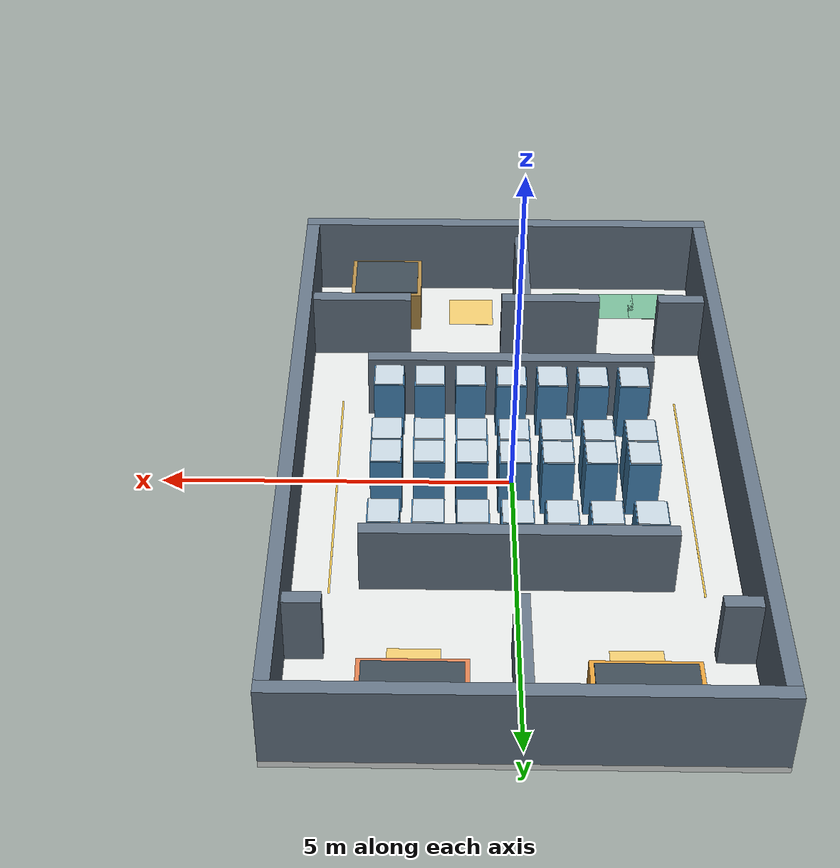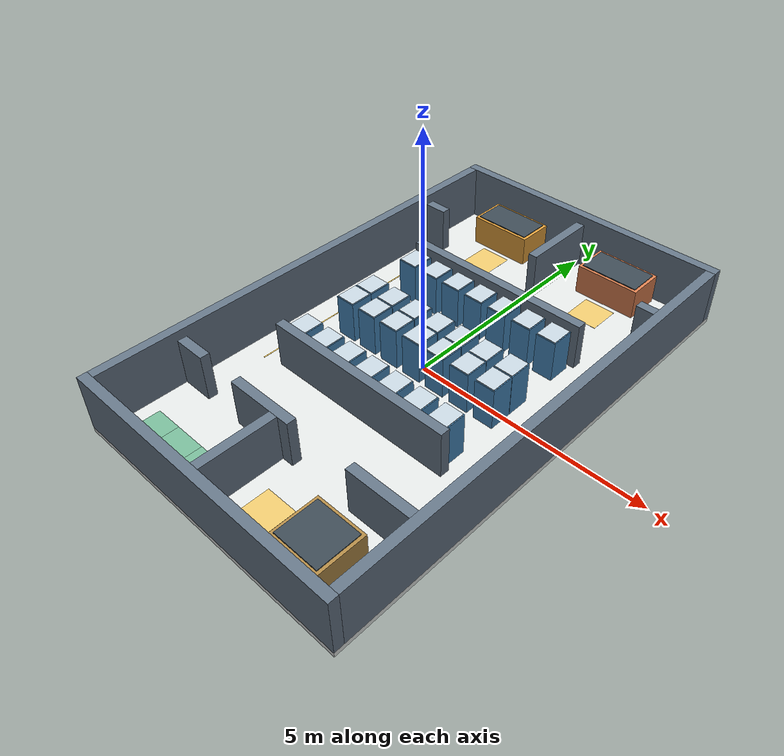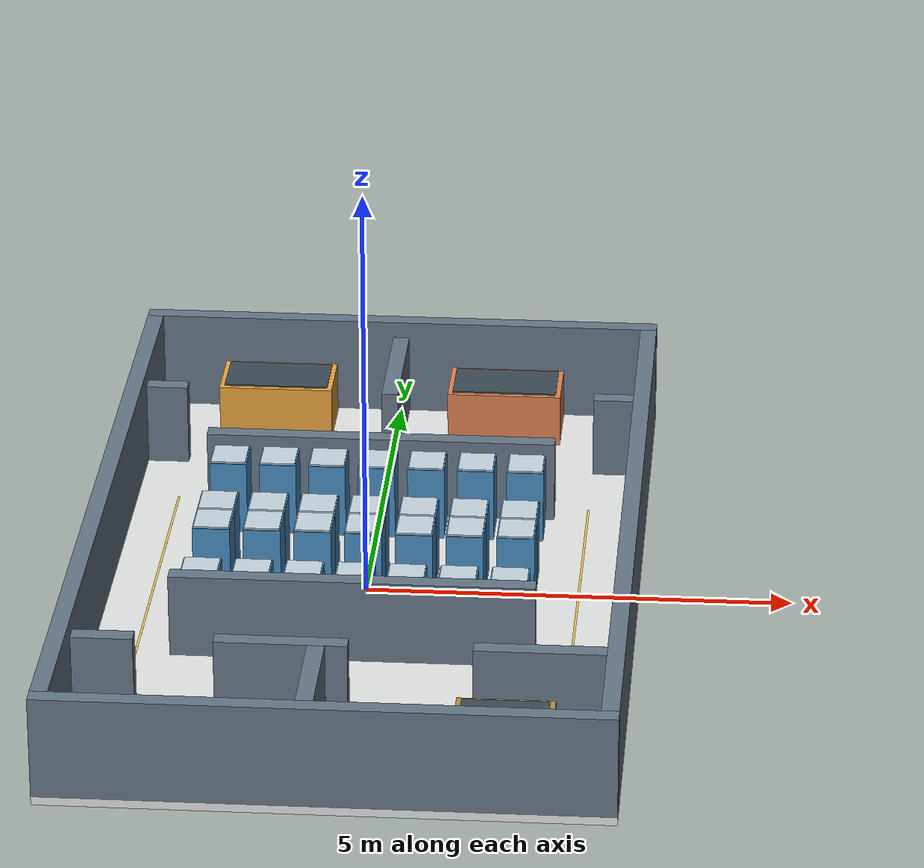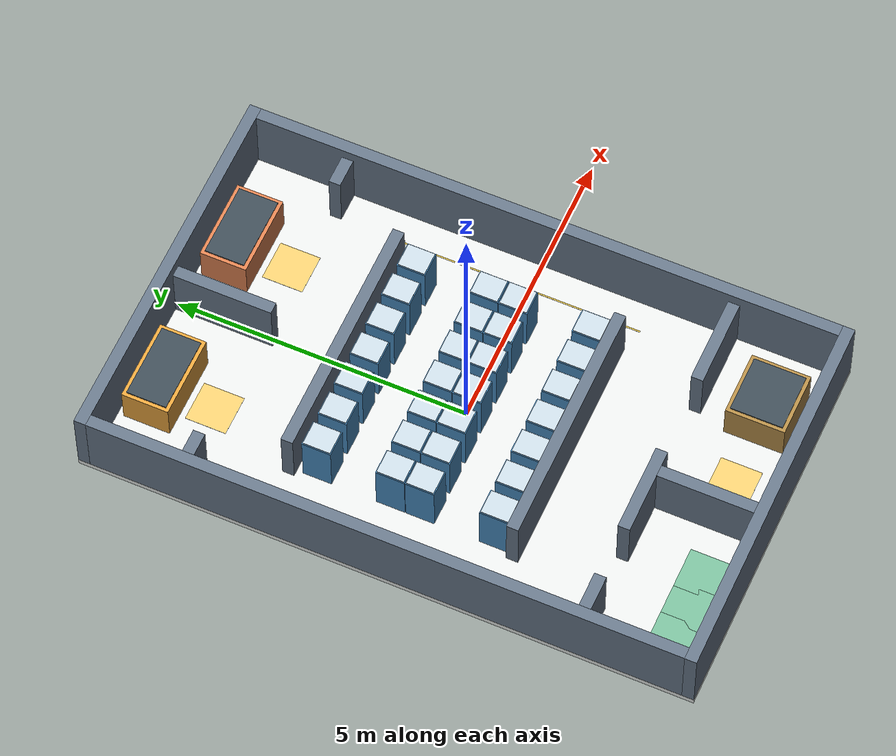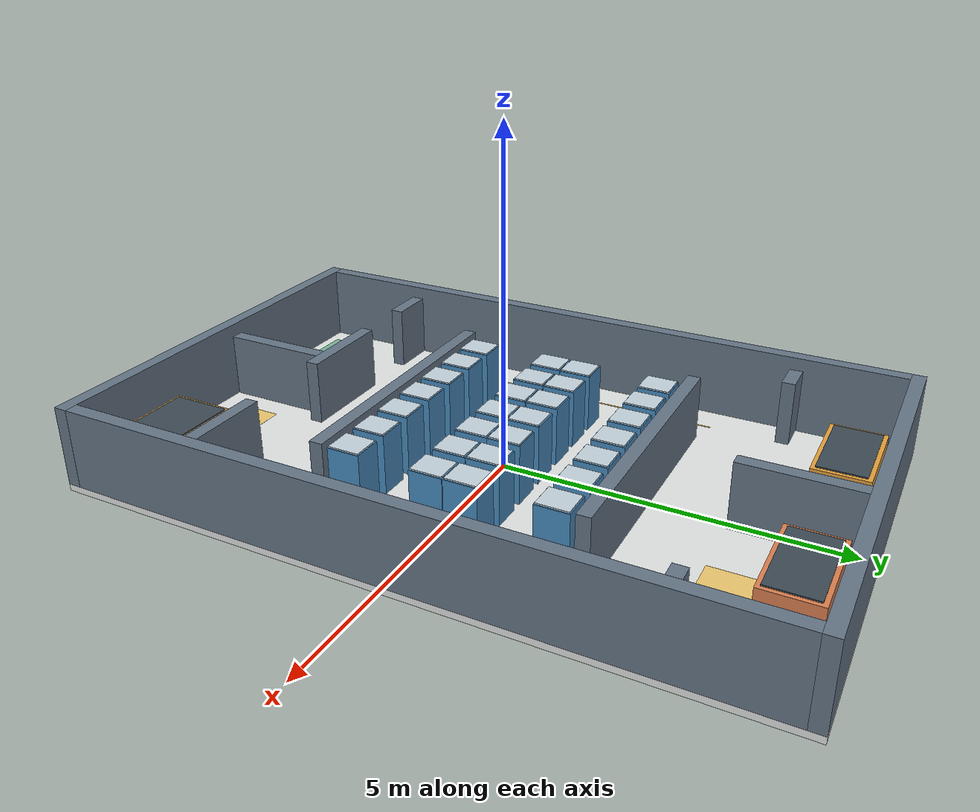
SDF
<?xml version='1.0' encoding='utf-8'?>
<sdf version="1.6">
  <world name="warehouse_small">
    <gravity>0 0 -9.8</gravity>
    <physics name="default_physics" type="ode">
      <max_step_size>0.001</max_step_size>
      <real_time_factor>1</real_time_factor>
      <real_time_update_rate>1000</real_time_update_rate>
    </physics>
    <plugin name="gazebo_ros_state" filename="libgazebo_ros_state.so">
      <ros>
        <namespace>/gazebo</namespace>
      </ros>
      <update_rate>30.0</update_rate>
    </plugin>
    <scene>
      <ambient>.7 .7 .7 1</ambient>
      <background>.88 .91 .94 1</background>
      <shadows>false</shadows>
    </scene>
    <light name="sun" type="directional">
      <pose>0 0 10 0 0 0</pose>
      <diffuse>.8 .8 .8 1</diffuse>
      <specular>.1 .1 .1 1</specular>
      <direction>-.3 .2 -1</direction>
      <cast_shadows>false</cast_shadows>
    </light>
    <model name="floor">
      <static>true</static>
      <link name="floor_link">
        <collision name="floor_collision">
          <pose>0 0 -.05 0 0 0</pose>
          <geometry>
            <box>
              <size>6.4 10.4 0.1</size>
            </box>
          </geometry>
        </collision>
        <visual name="floor_visual">
          <pose>0 0 -0.05 0 0 0</pose>
          <geometry>
            <box>
              <size>6.4 10.4 0.1</size>
            </box>
          </geometry>
          <material>
            <ambient>0.8901960784313725 0.9019607843137255 0.8980392156862745 1</ambient>
            <diffuse>0.8901960784313725 0.9019607843137255 0.8980392156862745 1</diffuse>
          </material>
          <cast_shadows>false</cast_shadows>
        </visual>
      </link>
    </model>
    <model name="wall_north">
      <static>true</static>
      <pose>0 5.1 0 0 0 0</pose>
      <link name="body">
        <collision name="collision">
          <pose>0 0 0.6 0 0 0</pose>
          <geometry>
            <box>
              <size>6.4 0.2 1.2</size>
            </box>
          </geometry>
        </collision>
        <visual name="visual">
          <pose>0 0 0.6 0 0 0</pose>
          <geometry>
            <box>
              <size>6.4 0.2 1.2</size>
            </box>
          </geometry>
          <material>
            <ambient>0.4 0.4627450980392157 0.5294117647058824 1</ambient>
            <diffuse>0.4 0.4627450980392157 0.5294117647058824 1</diffuse>
          </material>
          <cast_shadows>false</cast_shadows>
        </visual>
      </link>
    </model>
    <model name="wall_south">
      <static>true</static>
      <pose>0 -5.1 0 0 0 0</pose>
      <link name="body">
        <collision name="collision">
          <pose>0 0 0.6 0 0 0</pose>
          <geometry>
            <box>
              <size>6.4 0.2 1.2</size>
            </box>
          </geometry>
        </collision>
        <visual name="visual">
          <pose>0 0 0.6 0 0 0</pose>
          <geometry>
            <box>
              <size>6.4 0.2 1.2</size>
            </box>
          </geometry>
          <material>
            <ambient>0.4 0.4627450980392157 0.5294117647058824 1</ambient>
            <diffuse>0.4 0.4627450980392157 0.5294117647058824 1</diffuse>
          </material>
          <cast_shadows>false</cast_shadows>
        </visual>
      </link>
    </model>
    <model name="wall_west">
      <static>true</static>
      <pose>-3.1 0 0 0 0 0</pose>
      <link name="body">
        <collision name="collision">
          <pose>0 0 0.6 0 0 0</pose>
          <geometry>
            <box>
              <size>0.2 10 1.2</size>
            </box>
          </geometry>
        </collision>
        <visual name="visual">
          <pose>0 0 0.6 0 0 0</pose>
          <geometry>
            <box>
              <size>0.2 10 1.2</size>
            </box>
          </geometry>
          <material>
            <ambient>0.4 0.4627450980392157 0.5294117647058824 1</ambient>
            <diffuse>0.4 0.4627450980392157 0.5294117647058824 1</diffuse>
          </material>
          <cast_shadows>false</cast_shadows>
        </visual>
      </link>
    </model>
    <model name="wall_east">
      <static>true</static>
      <pose>3.1 0 0 0 0 0</pose>
      <link name="body">
        <collision name="collision">
          <pose>0 0 0.6 0 0 0</pose>
          <geometry>
            <box>
              <size>0.2 10 1.2</size>
            </box>
          </geometry>
        </collision>
        <visual name="visual">
          <pose>0 0 0.6 0 0 0</pose>
          <geometry>
            <box>
              <size>0.2 10 1.2</size>
            </box>
          </geometry>
          <material>
            <ambient>0.4 0.4627450980392157 0.5294117647058824 1</ambient>
            <diffuse>0.4 0.4627450980392157 0.5294117647058824 1</diffuse>
          </material>
          <cast_shadows>false</cast_shadows>
        </visual>
      </link>
    </model>
    <model name="storage_north">
      <static>true</static>
      <pose>0 2.1 0 0 0 0</pose>
      <link name="body">
        <collision name="collision">
          <pose>0 0 0.5 0 0 0</pose>
          <geometry>
            <box>
              <size>4.2 0.2 1.0</size>
            </box>
          </geometry>
        </collision>
        <visual name="visual">
          <pose>0 0 0.5 0 0 0</pose>
          <geometry>
            <box>
              <size>4.2 0.2 1.0</size>
            </box>
          </geometry>
          <material>
            <ambient>0.4 0.4627450980392157 0.5294117647058824 1</ambient>
            <diffuse>0.4 0.4627450980392157 0.5294117647058824 1</diffuse>
          </material>
          <cast_shadows>false</cast_shadows>
        </visual>
      </link>
    </model>
    <model name="storage_south">
      <static>true</static>
      <pose>0 -1.7 0 0 0 0</pose>
      <link name="body">
        <collision name="collision">
          <pose>0 0 0.5 0 0 0</pose>
          <geometry>
            <box>
              <size>4.2 0.2 1.0</size>
            </box>
          </geometry>
        </collision>
        <visual name="visual">
          <pose>0 0 0.5 0 0 0</pose>
          <geometry>
            <box>
              <size>4.2 0.2 1.0</size>
            </box>
          </geometry>
          <material>
            <ambient>0.4 0.4627450980392157 0.5294117647058824 1</ambient>
            <diffuse>0.4 0.4627450980392157 0.5294117647058824 1</diffuse>
          </material>
          <cast_shadows>false</cast_shadows>
        </visual>
      </link>
    </model>
    <model name="wall_t1_t2">
      <static>true</static>
      <pose>0 4.15 0 0 0 0</pose>
      <link name="body">
        <collision name="collision">
          <pose>0 0 0.5 0 0 0</pose>
          <geometry>
            <box>
              <size>0.2 1.7 1.0</size>
            </box>
          </geometry>
        </collision>
        <visual name="visual">
          <pose>0 0 0.5 0 0 0</pose>
          <geometry>
            <box>
              <size>0.2 1.7 1.0</size>
            </box>
          </geometry>
          <material>
            <ambient>0.4 0.4627450980392157 0.5294117647058824 1</ambient>
            <diffuse>0.4 0.4627450980392157 0.5294117647058824 1</diffuse>
          </material>
          <cast_shadows>false</cast_shadows>
        </visual>
      </link>
    </model>
    <model name="work_stub_w">
      <static>true</static>
      <pose>-2.75 3.4 0 0 0 0</pose>
      <link name="body">
        <collision name="collision">
          <pose>0 0 0.5 0 0 0</pose>
          <geometry>
            <box>
              <size>0.5 0.2 1.0</size>
            </box>
          </geometry>
        </collision>
        <visual name="visual">
          <pose>0 0 0.5 0 0 0</pose>
          <geometry>
            <box>
              <size>0.5 0.2 1.0</size>
            </box>
          </geometry>
          <material>
            <ambient>0.4 0.4627450980392157 0.5294117647058824 1</ambient>
            <diffuse>0.4 0.4627450980392157 0.5294117647058824 1</diffuse>
          </material>
          <cast_shadows>false</cast_shadows>
        </visual>
      </link>
    </model>
    <model name="work_stub_e">
      <static>true</static>
      <pose>2.75 3.4 0 0 0 0</pose>
      <link name="body">
        <collision name="collision">
          <pose>0 0 0.5 0 0 0</pose>
          <geometry>
            <box>
              <size>0.5 0.2 1.0</size>
            </box>
          </geometry>
        </collision>
        <visual name="visual">
          <pose>0 0 0.5 0 0 0</pose>
          <geometry>
            <box>
              <size>0.5 0.2 1.0</size>
            </box>
          </geometry>
          <material>
            <ambient>0.4 0.4627450980392157 0.5294117647058824 1</ambient>
            <diffuse>0.4 0.4627450980392157 0.5294117647058824 1</diffuse>
          </material>
          <cast_shadows>false</cast_shadows>
        </visual>
      </link>
    </model>
    <model name="partition_west">
      <static>true</static>
      <pose>-2.65 -3.25 0 0 0 0</pose>
      <link name="body">
        <collision name="collision">
          <pose>0 0 0.5 0 0 0</pose>
          <geometry>
            <box>
              <size>0.7 0.2 1.0</size>
            </box>
          </geometry>
        </collision>
        <visual name="visual">
          <pose>0 0 0.5 0 0 0</pose>
          <geometry>
            <box>
              <size>0.7 0.2 1.0</size>
            </box>
          </geometry>
          <material>
            <ambient>0.4 0.4627450980392157 0.5294117647058824 1</ambient>
            <diffuse>0.4 0.4627450980392157 0.5294117647058824 1</diffuse>
          </material>
          <cast_shadows>false</cast_shadows>
        </visual>
      </link>
    </model>
    <model name="partition_middle">
      <static>true</static>
      <pose>-0.65 -3.25 0 0 0 0</pose>
      <link name="body">
        <collision name="collision">
          <pose>0 0 0.5 0 0 0</pose>
          <geometry>
            <box>
              <size>1.5 0.2 1.0</size>
            </box>
          </geometry>
        </collision>
        <visual name="visual">
          <pose>0 0 0.5 0 0 0</pose>
          <geometry>
            <box>
              <size>1.5 0.2 1.0</size>
            </box>
          </geometry>
          <material>
            <ambient>0.4 0.4627450980392157 0.5294117647058824 1</ambient>
            <diffuse>0.4 0.4627450980392157 0.5294117647058824 1</diffuse>
          </material>
          <cast_shadows>false</cast_shadows>
        </visual>
      </link>
    </model>
    <model name="partition_east">
      <static>true</static>
      <pose>2.25 -3.25 0 0 0 0</pose>
      <link name="body">
        <collision name="collision">
          <pose>0 0 0.5 0 0 0</pose>
          <geometry>
            <box>
              <size>1.5 0.2 1.0</size>
            </box>
          </geometry>
        </collision>
        <visual name="visual">
          <pose>0 0 0.5 0 0 0</pose>
          <geometry>
            <box>
              <size>1.5 0.2 1.0</size>
            </box>
          </geometry>
          <material>
            <ambient>0.4 0.4627450980392157 0.5294117647058824 1</ambient>
            <diffuse>0.4 0.4627450980392157 0.5294117647058824 1</diffuse>
          </material>
          <cast_shadows>false</cast_shadows>
        </visual>
      </link>
    </model>
    <model name="shipping_divider">
      <static>true</static>
      <pose>-0.25 -4.175 0 0 0 0</pose>
      <link name="body">
        <collision name="collision">
          <pose>0 0 0.5 0 0 0</pose>
          <geometry>
            <box>
              <size>0.2 1.65 1.0</size>
            </box>
          </geometry>
        </collision>
        <visual name="visual">
          <pose>0 0 0.5 0 0 0</pose>
          <geometry>
            <box>
              <size>0.2 1.65 1.0</size>
            </box>
          </geometry>
          <material>
            <ambient>0.4 0.4627450980392157 0.5294117647058824 1</ambient>
            <diffuse>0.4 0.4627450980392157 0.5294117647058824 1</diffuse>
          </material>
          <cast_shadows>false</cast_shadows>
        </visual>
      </link>
    </model>
    <model name="receiving">
      <static>true</static>
      <pose>-1.5 4.5 0 0 0 0</pose>
      <link name="body">
        <collision name="collision">
          <pose>0 0 0.325 0 0 0</pose>
          <geometry>
            <box>
              <size>1.4 0.8 0.65</size>
            </box>
          </geometry>
        </collision>
        <visual name="visual">
          <pose>0 0 0.325 0 0 0</pose>
          <geometry>
            <box>
              <size>1.4 0.8 0.65</size>
            </box>
          </geometry>
          <material>
            <ambient>0.9019607843137255 0.6352941176470588 0.23529411764705882 1</ambient>
            <diffuse>0.9019607843137255 0.6352941176470588 0.23529411764705882 1</diffuse>
          </material>
          <cast_shadows>false</cast_shadows>
        </visual>
        <visual name="work_surface">
          <pose>0 0 0.66 0 0 0</pose>
          <geometry>
            <box>
              <size>1.2799999999999998 0.68 0.02</size>
            </box>
          </geometry>
          <material>
            <ambient>0.23921568627450981 0.29411764705882354 0.3333333333333333 1</ambient>
            <diffuse>0.23921568627450981 0.29411764705882354 0.3333333333333333 1</diffuse>
          </material>
          <cast_shadows>false</cast_shadows>
        </visual>
      </link>
    </model>
    <model name="conveyor">
      <static>true</static>
      <pose>1.35 4.5 0 0 0 0</pose>
      <link name="body">
        <collision name="collision">
          <pose>0 0 0.325 0 0 0</pose>
          <geometry>
            <box>
              <size>1.4 0.8 0.65</size>
            </box>
          </geometry>
        </collision>
        <visual name="visual">
          <pose>0 0 0.325 0 0 0</pose>
          <geometry>
            <box>
              <size>1.4 0.8 0.65</size>
            </box>
          </geometry>
          <material>
            <ambient>0.8627450980392157 0.5019607843137255 0.3137254901960784 1</ambient>
            <diffuse>0.8627450980392157 0.5019607843137255 0.3137254901960784 1</diffuse>
          </material>
          <cast_shadows>false</cast_shadows>
        </visual>
        <visual name="work_surface">
          <pose>0 0 0.66 0 0 0</pose>
          <geometry>
            <box>
              <size>1.2799999999999998 0.68 0.02</size>
            </box>
          </geometry>
          <material>
            <ambient>0.23921568627450981 0.29411764705882354 0.3333333333333333 1</ambient>
            <diffuse>0.23921568627450981 0.29411764705882354 0.3333333333333333 1</diffuse>
          </material>
          <cast_shadows>false</cast_shadows>
        </visual>
      </link>
    </model>
    <model name="shipping">
      <static>true</static>
      <pose>1.9 -4.3 0 0 0 0</pose>
      <link name="body">
        <collision name="collision">
          <pose>0 0 0.325 0 0 0</pose>
          <geometry>
            <box>
              <size>1.1 1.0 0.65</size>
            </box>
          </geometry>
        </collision>
        <visual name="visual">
          <pose>0 0 0.325 0 0 0</pose>
          <geometry>
            <box>
              <size>1.1 1.0 0.65</size>
            </box>
          </geometry>
          <material>
            <ambient>0.6980392156862745 0.5450980392156862 0.2784313725490196 1</ambient>
            <diffuse>0.6980392156862745 0.5450980392156862 0.2784313725490196 1</diffuse>
          </material>
          <cast_shadows>false</cast_shadows>
        </visual>
        <visual name="work_surface">
          <pose>0 0 0.66 0 0 0</pose>
          <geometry>
            <box>
              <size>0.9800000000000001 0.88 0.02</size>
            </box>
          </geometry>
          <material>
            <ambient>0.23921568627450981 0.29411764705882354 0.3333333333333333 1</ambient>
            <diffuse>0.23921568627450981 0.29411764705882354 0.3333333333333333 1</diffuse>
          </material>
          <cast_shadows>false</cast_shadows>
        </visual>
      </link>
    </model>
    <model name="rack_A1_1">
      <static>true</static>
      <pose>-1.78 -1.35 0 0 0 0</pose>
      <link name="body">
        <collision name="collision">
          <pose>0 0 0.45 0 0 0</pose>
          <geometry>
            <box>
              <size>0.44 0.5 0.9</size>
            </box>
          </geometry>
        </collision>
        <visual name="bay_single">
          <pose>0 0 0.45 0 0 0</pose>
          <geometry>
            <box>
              <size>0.44 0.49 0.9</size>
            </box>
          </geometry>
          <material>
            <ambient>0.2823529411764706 0.5490196078431373 0.7529411764705882 1</ambient>
            <diffuse>0.2823529411764706 0.5490196078431373 0.7529411764705882 1</diffuse>
          </material>
          <cast_shadows>false</cast_shadows>
        </visual>
        <visual name="cap_single">
          <pose>0 0 0.91 0 0 0</pose>
          <geometry>
            <box>
              <size>0.41000000000000003 0.46 0.02</size>
            </box>
          </geometry>
          <material>
            <ambient>0.7764705882352941 0.8352941176470589 0.8745098039215686 1</ambient>
            <diffuse>0.7764705882352941 0.8352941176470589 0.8745098039215686 1</diffuse>
          </material>
          <cast_shadows>false</cast_shadows>
        </visual>
      </link>
    </model>
    <model name="rack_A1_2">
      <static>true</static>
      <pose>-1.1866666666666668 -1.35 0 0 0 0</pose>
      <link name="body">
        <collision name="collision">
          <pose>0 0 0.45 0 0 0</pose>
          <geometry>
            <box>
              <size>0.44 0.5 0.9</size>
            </box>
          </geometry>
        </collision>
        <visual name="bay_single">
          <pose>0 0 0.45 0 0 0</pose>
          <geometry>
            <box>
              <size>0.44 0.49 0.9</size>
            </box>
          </geometry>
          <material>
            <ambient>0.2823529411764706 0.5490196078431373 0.7529411764705882 1</ambient>
            <diffuse>0.2823529411764706 0.5490196078431373 0.7529411764705882 1</diffuse>
          </material>
          <cast_shadows>false</cast_shadows>
        </visual>
        <visual name="cap_single">
          <pose>0 0 0.91 0 0 0</pose>
          <geometry>
            <box>
              <size>0.41000000000000003 0.46 0.02</size>
            </box>
          </geometry>
          <material>
            <ambient>0.7764705882352941 0.8352941176470589 0.8745098039215686 1</ambient>
            <diffuse>0.7764705882352941 0.8352941176470589 0.8745098039215686 1</diffuse>
          </material>
          <cast_shadows>false</cast_shadows>
        </visual>
      </link>
    </model>
    <model name="rack_A1_3">
      <static>true</static>
      <pose>-0.5933333333333335 -1.35 0 0 0 0</pose>
      <link name="body">
        <collision name="collision">
          <pose>0 0 0.45 0 0 0</pose>
          <geometry>
            <box>
              <size>0.44 0.5 0.9</size>
            </box>
          </geometry>
        </collision>
        <visual name="bay_single">
          <pose>0 0 0.45 0 0 0</pose>
          <geometry>
            <box>
              <size>0.44 0.49 0.9</size>
            </box>
          </geometry>
          <material>
            <ambient>0.2823529411764706 0.5490196078431373 0.7529411764705882 1</ambient>
            <diffuse>0.2823529411764706 0.5490196078431373 0.7529411764705882 1</diffuse>
          </material>
          <cast_shadows>false</cast_shadows>
        </visual>
        <visual name="cap_single">
          <pose>0 0 0.91 0 0 0</pose>
          <geometry>
            <box>
              <size>0.41000000000000003 0.46 0.02</size>
            </box>
          </geometry>
          <material>
            <ambient>0.7764705882352941 0.8352941176470589 0.8745098039215686 1</ambient>
            <diffuse>0.7764705882352941 0.8352941176470589 0.8745098039215686 1</diffuse>
          </material>
          <cast_shadows>false</cast_shadows>
        </visual>
      </link>
    </model>
    <model name="rack_A1_4">
      <static>true</static>
      <pose>-2.220446049250313e-16 -1.35 0 0 0 0</pose>
      <link name="body">
        <collision name="collision">
          <pose>0 0 0.45 0 0 0</pose>
          <geometry>
            <box>
              <size>0.44 0.5 0.9</size>
            </box>
          </geometry>
        </collision>
        <visual name="bay_single">
          <pose>0 0 0.45 0 0 0</pose>
          <geometry>
            <box>
              <size>0.44 0.49 0.9</size>
            </box>
          </geometry>
          <material>
            <ambient>0.2823529411764706 0.5490196078431373 0.7529411764705882 1</ambient>
            <diffuse>0.2823529411764706 0.5490196078431373 0.7529411764705882 1</diffuse>
          </material>
          <cast_shadows>false</cast_shadows>
        </visual>
        <visual name="cap_single">
          <pose>0 0 0.91 0 0 0</pose>
          <geometry>
            <box>
              <size>0.41000000000000003 0.46 0.02</size>
            </box>
          </geometry>
          <material>
            <ambient>0.7764705882352941 0.8352941176470589 0.8745098039215686 1</ambient>
            <diffuse>0.7764705882352941 0.8352941176470589 0.8745098039215686 1</diffuse>
          </material>
          <cast_shadows>false</cast_shadows>
        </visual>
      </link>
    </model>
    <model name="rack_A1_5">
      <static>true</static>
      <pose>0.593333333333333 -1.35 0 0 0 0</pose>
      <link name="body">
        <collision name="collision">
          <pose>0 0 0.45 0 0 0</pose>
          <geometry>
            <box>
              <size>0.44 0.5 0.9</size>
            </box>
          </geometry>
        </collision>
        <visual name="bay_single">
          <pose>0 0 0.45 0 0 0</pose>
          <geometry>
            <box>
              <size>0.44 0.49 0.9</size>
            </box>
          </geometry>
          <material>
            <ambient>0.2823529411764706 0.5490196078431373 0.7529411764705882 1</ambient>
            <diffuse>0.2823529411764706 0.5490196078431373 0.7529411764705882 1</diffuse>
          </material>
          <cast_shadows>false</cast_shadows>
        </visual>
        <visual name="cap_single">
          <pose>0 0 0.91 0 0 0</pose>
          <geometry>
            <box>
              <size>0.41000000000000003 0.46 0.02</size>
            </box>
          </geometry>
          <material>
            <ambient>0.7764705882352941 0.8352941176470589 0.8745098039215686 1</ambient>
            <diffuse>0.7764705882352941 0.8352941176470589 0.8745098039215686 1</diffuse>
          </material>
          <cast_shadows>false</cast_shadows>
        </visual>
      </link>
    </model>
    <model name="rack_A1_6">
      <static>true</static>
      <pose>1.1866666666666663 -1.35 0 0 0 0</pose>
      <link name="body">
        <collision name="collision">
          <pose>0 0 0.45 0 0 0</pose>
          <geometry>
            <box>
              <size>0.44 0.5 0.9</size>
            </box>
          </geometry>
        </collision>
        <visual name="bay_single">
          <pose>0 0 0.45 0 0 0</pose>
          <geometry>
            <box>
              <size>0.44 0.49 0.9</size>
            </box>
          </geometry>
          <material>
            <ambient>0.2823529411764706 0.5490196078431373 0.7529411764705882 1</ambient>
            <diffuse>0.2823529411764706 0.5490196078431373 0.7529411764705882 1</diffuse>
          </material>
          <cast_shadows>false</cast_shadows>
        </visual>
        <visual name="cap_single">
          <pose>0 0 0.91 0 0 0</pose>
          <geometry>
            <box>
              <size>0.41000000000000003 0.46 0.02</size>
            </box>
          </geometry>
          <material>
            <ambient>0.7764705882352941 0.8352941176470589 0.8745098039215686 1</ambient>
            <diffuse>0.7764705882352941 0.8352941176470589 0.8745098039215686 1</diffuse>
          </material>
          <cast_shadows>false</cast_shadows>
        </visual>
      </link>
    </model>
    <model name="rack_A1_7">
      <static>true</static>
      <pose>1.7799999999999996 -1.35 0 0 0 0</pose>
      <link name="body">
        <collision name="collision">
          <pose>0 0 0.45 0 0 0</pose>
          <geometry>
            <box>
              <size>0.44 0.5 0.9</size>
            </box>
          </geometry>
        </collision>
        <visual name="bay_single">
          <pose>0 0 0.45 0 0 0</pose>
          <geometry>
            <box>
              <size>0.44 0.49 0.9</size>
            </box>
          </geometry>
          <material>
            <ambient>0.2823529411764706 0.5490196078431373 0.7529411764705882 1</ambient>
            <diffuse>0.2823529411764706 0.5490196078431373 0.7529411764705882 1</diffuse>
          </material>
          <cast_shadows>false</cast_shadows>
        </visual>
        <visual name="cap_single">
          <pose>0 0 0.91 0 0 0</pose>
          <geometry>
            <box>
              <size>0.41000000000000003 0.46 0.02</size>
            </box>
          </geometry>
          <material>
            <ambient>0.7764705882352941 0.8352941176470589 0.8745098039215686 1</ambient>
            <diffuse>0.7764705882352941 0.8352941176470589 0.8745098039215686 1</diffuse>
          </material>
          <cast_shadows>false</cast_shadows>
        </visual>
      </link>
    </model>
    <model name="rack_A2_1">
      <static>true</static>
      <pose>-1.78 -0.1 0 0 0 0</pose>
      <link name="body">
        <collision name="collision">
          <pose>0 0 0.45 0 0 0</pose>
          <geometry>
            <box>
              <size>0.44 0.5 0.9</size>
            </box>
          </geometry>
        </collision>
        <visual name="bay_single">
          <pose>0 0 0.45 0 0 0</pose>
          <geometry>
            <box>
              <size>0.44 0.49 0.9</size>
            </box>
          </geometry>
          <material>
            <ambient>0.2823529411764706 0.5490196078431373 0.7529411764705882 1</ambient>
            <diffuse>0.2823529411764706 0.5490196078431373 0.7529411764705882 1</diffuse>
          </material>
          <cast_shadows>false</cast_shadows>
        </visual>
        <visual name="cap_single">
          <pose>0 0 0.91 0 0 0</pose>
          <geometry>
            <box>
              <size>0.41000000000000003 0.46 0.02</size>
            </box>
          </geometry>
          <material>
            <ambient>0.7764705882352941 0.8352941176470589 0.8745098039215686 1</ambient>
            <diffuse>0.7764705882352941 0.8352941176470589 0.8745098039215686 1</diffuse>
          </material>
          <cast_shadows>false</cast_shadows>
        </visual>
      </link>
    </model>
    <model name="rack_A2_2">
      <static>true</static>
      <pose>-1.1866666666666668 -0.1 0 0 0 0</pose>
      <link name="body">
        <collision name="collision">
          <pose>0 0 0.45 0 0 0</pose>
          <geometry>
            <box>
              <size>0.44 0.5 0.9</size>
            </box>
          </geometry>
        </collision>
        <visual name="bay_single">
          <pose>0 0 0.45 0 0 0</pose>
          <geometry>
            <box>
              <size>0.44 0.49 0.9</size>
            </box>
          </geometry>
          <material>
            <ambient>0.2823529411764706 0.5490196078431373 0.7529411764705882 1</ambient>
            <diffuse>0.2823529411764706 0.5490196078431373 0.7529411764705882 1</diffuse>
          </material>
          <cast_shadows>false</cast_shadows>
        </visual>
        <visual name="cap_single">
          <pose>0 0 0.91 0 0 0</pose>
          <geometry>
            <box>
              <size>0.41000000000000003 0.46 0.02</size>
            </box>
          </geometry>
          <material>
            <ambient>0.7764705882352941 0.8352941176470589 0.8745098039215686 1</ambient>
            <diffuse>0.7764705882352941 0.8352941176470589 0.8745098039215686 1</diffuse>
          </material>
          <cast_shadows>false</cast_shadows>
        </visual>
      </link>
    </model>
    <model name="rack_A2_3">
      <static>true</static>
      <pose>-0.5933333333333335 -0.1 0 0 0 0</pose>
      <link name="body">
        <collision name="collision">
          <pose>0 0 0.45 0 0 0</pose>
          <geometry>
            <box>
              <size>0.44 0.5 0.9</size>
            </box>
          </geometry>
        </collision>
        <visual name="bay_single">
          <pose>0 0 0.45 0 0 0</pose>
          <geometry>
            <box>
              <size>0.44 0.49 0.9</size>
            </box>
          </geometry>
          <material>
            <ambient>0.2823529411764706 0.5490196078431373 0.7529411764705882 1</ambient>
            <diffuse>0.2823529411764706 0.5490196078431373 0.7529411764705882 1</diffuse>
          </material>
          <cast_shadows>false</cast_shadows>
        </visual>
        <visual name="cap_single">
          <pose>0 0 0.91 0 0 0</pose>
          <geometry>
            <box>
              <size>0.41000000000000003 0.46 0.02</size>
            </box>
          </geometry>
          <material>
            <ambient>0.7764705882352941 0.8352941176470589 0.8745098039215686 1</ambient>
            <diffuse>0.7764705882352941 0.8352941176470589 0.8745098039215686 1</diffuse>
          </material>
          <cast_shadows>false</cast_shadows>
        </visual>
      </link>
    </model>
    <model name="rack_A2_4">
      <static>true</static>
      <pose>-2.220446049250313e-16 -0.1 0 0 0 0</pose>
      <link name="body">
        <collision name="collision">
          <pose>0 0 0.45 0 0 0</pose>
          <geometry>
            <box>
              <size>0.44 0.5 0.9</size>
            </box>
          </geometry>
        </collision>
        <visual name="bay_single">
          <pose>0 0 0.45 0 0 0</pose>
          <geometry>
            <box>
              <size>0.44 0.49 0.9</size>
            </box>
          </geometry>
          <material>
            <ambient>0.2823529411764706 0.5490196078431373 0.7529411764705882 1</ambient>
            <diffuse>0.2823529411764706 0.5490196078431373 0.7529411764705882 1</diffuse>
          </material>
          <cast_shadows>false</cast_shadows>
        </visual>
        <visual name="cap_single">
          <pose>0 0 0.91 0 0 0</pose>
          <geometry>
            <box>
              <size>0.41000000000000003 0.46 0.02</size>
            </box>
          </geometry>
          <material>
            <ambient>0.7764705882352941 0.8352941176470589 0.8745098039215686 1</ambient>
            <diffuse>0.7764705882352941 0.8352941176470589 0.8745098039215686 1</diffuse>
          </material>
          <cast_shadows>false</cast_shadows>
        </visual>
      </link>
    </model>
    <model name="rack_A2_5">
      <static>true</static>
      <pose>0.593333333333333 -0.1 0 0 0 0</pose>
      <link name="body">
        <collision name="collision">
          <pose>0 0 0.45 0 0 0</pose>
          <geometry>
            <box>
              <size>0.44 0.5 0.9</size>
            </box>
          </geometry>
        </collision>
        <visual name="bay_single">
          <pose>0 0 0.45 0 0 0</pose>
          <geometry>
            <box>
              <size>0.44 0.49 0.9</size>
            </box>
          </geometry>
          <material>
            <ambient>0.2823529411764706 0.5490196078431373 0.7529411764705882 1</ambient>
            <diffuse>0.2823529411764706 0.5490196078431373 0.7529411764705882 1</diffuse>
          </material>
          <cast_shadows>false</cast_shadows>
        </visual>
        <visual name="cap_single">
          <pose>0 0 0.91 0 0 0</pose>
          <geometry>
            <box>
              <size>0.41000000000000003 0.46 0.02</size>
            </box>
          </geometry>
          <material>
            <ambient>0.7764705882352941 0.8352941176470589 0.8745098039215686 1</ambient>
            <diffuse>0.7764705882352941 0.8352941176470589 0.8745098039215686 1</diffuse>
          </material>
          <cast_shadows>false</cast_shadows>
        </visual>
      </link>
    </model>
    <model name="rack_A2_6">
      <static>true</static>
      <pose>1.1866666666666663 -0.1 0 0 0 0</pose>
      <link name="body">
        <collision name="collision">
          <pose>0 0 0.45 0 0 0</pose>
          <geometry>
            <box>
              <size>0.44 0.5 0.9</size>
            </box>
          </geometry>
        </collision>
        <visual name="bay_single">
          <pose>0 0 0.45 0 0 0</pose>
          <geometry>
            <box>
              <size>0.44 0.49 0.9</size>
            </box>
          </geometry>
          <material>
            <ambient>0.2823529411764706 0.5490196078431373 0.7529411764705882 1</ambient>
            <diffuse>0.2823529411764706 0.5490196078431373 0.7529411764705882 1</diffuse>
          </material>
          <cast_shadows>false</cast_shadows>
        </visual>
        <visual name="cap_single">
          <pose>0 0 0.91 0 0 0</pose>
          <geometry>
            <box>
              <size>0.41000000000000003 0.46 0.02</size>
            </box>
          </geometry>
          <material>
            <ambient>0.7764705882352941 0.8352941176470589 0.8745098039215686 1</ambient>
            <diffuse>0.7764705882352941 0.8352941176470589 0.8745098039215686 1</diffuse>
          </material>
          <cast_shadows>false</cast_shadows>
        </visual>
      </link>
    </model>
    <model name="rack_A2_7">
      <static>true</static>
      <pose>1.7799999999999996 -0.1 0 0 0 0</pose>
      <link name="body">
        <collision name="collision">
          <pose>0 0 0.45 0 0 0</pose>
          <geometry>
            <box>
              <size>0.44 0.5 0.9</size>
            </box>
          </geometry>
        </collision>
        <visual name="bay_single">
          <pose>0 0 0.45 0 0 0</pose>
          <geometry>
            <box>
              <size>0.44 0.49 0.9</size>
            </box>
          </geometry>
          <material>
            <ambient>0.2823529411764706 0.5490196078431373 0.7529411764705882 1</ambient>
            <diffuse>0.2823529411764706 0.5490196078431373 0.7529411764705882 1</diffuse>
          </material>
          <cast_shadows>false</cast_shadows>
        </visual>
        <visual name="cap_single">
          <pose>0 0 0.91 0 0 0</pose>
          <geometry>
            <box>
              <size>0.41000000000000003 0.46 0.02</size>
            </box>
          </geometry>
          <material>
            <ambient>0.7764705882352941 0.8352941176470589 0.8745098039215686 1</ambient>
            <diffuse>0.7764705882352941 0.8352941176470589 0.8745098039215686 1</diffuse>
          </material>
          <cast_shadows>false</cast_shadows>
        </visual>
      </link>
    </model>
    <model name="rack_B1_1">
      <static>true</static>
      <pose>-1.78 0.4 0 0 0 0</pose>
      <link name="body">
        <collision name="collision">
          <pose>0 0 0.45 0 0 0</pose>
          <geometry>
            <box>
              <size>0.44 0.5 0.9</size>
            </box>
          </geometry>
        </collision>
        <visual name="bay_single">
          <pose>0 0 0.45 0 0 0</pose>
          <geometry>
            <box>
              <size>0.44 0.49 0.9</size>
            </box>
          </geometry>
          <material>
            <ambient>0.2823529411764706 0.5490196078431373 0.7529411764705882 1</ambient>
            <diffuse>0.2823529411764706 0.5490196078431373 0.7529411764705882 1</diffuse>
          </material>
          <cast_shadows>false</cast_shadows>
        </visual>
        <visual name="cap_single">
          <pose>0 0 0.91 0 0 0</pose>
          <geometry>
            <box>
              <size>0.41000000000000003 0.46 0.02</size>
            </box>
          </geometry>
          <material>
            <ambient>0.7764705882352941 0.8352941176470589 0.8745098039215686 1</ambient>
            <diffuse>0.7764705882352941 0.8352941176470589 0.8745098039215686 1</diffuse>
          </material>
          <cast_shadows>false</cast_shadows>
        </visual>
      </link>
    </model>
    <model name="rack_B1_2">
      <static>true</static>
      <pose>-1.1866666666666668 0.4 0 0 0 0</pose>
      <link name="body">
        <collision name="collision">
          <pose>0 0 0.45 0 0 0</pose>
          <geometry>
            <box>
              <size>0.44 0.5 0.9</size>
            </box>
          </geometry>
        </collision>
        <visual name="bay_single">
          <pose>0 0 0.45 0 0 0</pose>
          <geometry>
            <box>
              <size>0.44 0.49 0.9</size>
            </box>
          </geometry>
          <material>
            <ambient>0.2823529411764706 0.5490196078431373 0.7529411764705882 1</ambient>
            <diffuse>0.2823529411764706 0.5490196078431373 0.7529411764705882 1</diffuse>
          </material>
          <cast_shadows>false</cast_shadows>
        </visual>
        <visual name="cap_single">
          <pose>0 0 0.91 0 0 0</pose>
          <geometry>
            <box>
              <size>0.41000000000000003 0.46 0.02</size>
            </box>
          </geometry>
          <material>
            <ambient>0.7764705882352941 0.8352941176470589 0.8745098039215686 1</ambient>
            <diffuse>0.7764705882352941 0.8352941176470589 0.8745098039215686 1</diffuse>
          </material>
          <cast_shadows>false</cast_shadows>
        </visual>
      </link>
    </model>
    <model name="rack_B1_3">
      <static>true</static>
      <pose>-0.5933333333333335 0.4 0 0 0 0</pose>
      <link name="body">
        <collision name="collision">
          <pose>0 0 0.45 0 0 0</pose>
          <geometry>
            <box>
              <size>0.44 0.5 0.9</size>
            </box>
          </geometry>
        </collision>
        <visual name="bay_single">
          <pose>0 0 0.45 0 0 0</pose>
          <geometry>
            <box>
              <size>0.44 0.49 0.9</size>
            </box>
          </geometry>
          <material>
            <ambient>0.2823529411764706 0.5490196078431373 0.7529411764705882 1</ambient>
            <diffuse>0.2823529411764706 0.5490196078431373 0.7529411764705882 1</diffuse>
          </material>
          <cast_shadows>false</cast_shadows>
        </visual>
        <visual name="cap_single">
          <pose>0 0 0.91 0 0 0</pose>
          <geometry>
            <box>
              <size>0.41000000000000003 0.46 0.02</size>
            </box>
          </geometry>
          <material>
            <ambient>0.7764705882352941 0.8352941176470589 0.8745098039215686 1</ambient>
            <diffuse>0.7764705882352941 0.8352941176470589 0.8745098039215686 1</diffuse>
          </material>
          <cast_shadows>false</cast_shadows>
        </visual>
      </link>
    </model>
    <model name="rack_B1_4">
      <static>true</static>
      <pose>-2.220446049250313e-16 0.4 0 0 0 0</pose>
      <link name="body">
        <collision name="collision">
          <pose>0 0 0.45 0 0 0</pose>
          <geometry>
            <box>
              <size>0.44 0.5 0.9</size>
            </box>
          </geometry>
        </collision>
        <visual name="bay_single">
          <pose>0 0 0.45 0 0 0</pose>
          <geometry>
            <box>
              <size>0.44 0.49 0.9</size>
            </box>
          </geometry>
          <material>
            <ambient>0.2823529411764706 0.5490196078431373 0.7529411764705882 1</ambient>
            <diffuse>0.2823529411764706 0.5490196078431373 0.7529411764705882 1</diffuse>
          </material>
          <cast_shadows>false</cast_shadows>
        </visual>
        <visual name="cap_single">
          <pose>0 0 0.91 0 0 0</pose>
          <geometry>
            <box>
              <size>0.41000000000000003 0.46 0.02</size>
            </box>
          </geometry>
          <material>
            <ambient>0.7764705882352941 0.8352941176470589 0.8745098039215686 1</ambient>
            <diffuse>0.7764705882352941 0.8352941176470589 0.8745098039215686 1</diffuse>
          </material>
          <cast_shadows>false</cast_shadows>
        </visual>
      </link>
    </model>
    <model name="rack_B1_5">
      <static>true</static>
      <pose>0.593333333333333 0.4 0 0 0 0</pose>
      <link name="body">
        <collision name="collision">
          <pose>0 0 0.45 0 0 0</pose>
          <geometry>
            <box>
              <size>0.44 0.5 0.9</size>
            </box>
          </geometry>
        </collision>
        <visual name="bay_single">
          <pose>0 0 0.45 0 0 0</pose>
          <geometry>
            <box>
              <size>0.44 0.49 0.9</size>
            </box>
          </geometry>
          <material>
            <ambient>0.2823529411764706 0.5490196078431373 0.7529411764705882 1</ambient>
            <diffuse>0.2823529411764706 0.5490196078431373 0.7529411764705882 1</diffuse>
          </material>
          <cast_shadows>false</cast_shadows>
        </visual>
        <visual name="cap_single">
          <pose>0 0 0.91 0 0 0</pose>
          <geometry>
            <box>
              <size>0.41000000000000003 0.46 0.02</size>
            </box>
          </geometry>
          <material>
            <ambient>0.7764705882352941 0.8352941176470589 0.8745098039215686 1</ambient>
            <diffuse>0.7764705882352941 0.8352941176470589 0.8745098039215686 1</diffuse>
          </material>
          <cast_shadows>false</cast_shadows>
        </visual>
      </link>
    </model>
    <model name="rack_B1_6">
      <static>true</static>
      <pose>1.1866666666666663 0.4 0 0 0 0</pose>
      <link name="body">
        <collision name="collision">
          <pose>0 0 0.45 0 0 0</pose>
          <geometry>
            <box>
              <size>0.44 0.5 0.9</size>
            </box>
          </geometry>
        </collision>
        <visual name="bay_single">
          <pose>0 0 0.45 0 0 0</pose>
          <geometry>
            <box>
              <size>0.44 0.49 0.9</size>
            </box>
          </geometry>
          <material>
            <ambient>0.2823529411764706 0.5490196078431373 0.7529411764705882 1</ambient>
            <diffuse>0.2823529411764706 0.5490196078431373 0.7529411764705882 1</diffuse>
          </material>
          <cast_shadows>false</cast_shadows>
        </visual>
        <visual name="cap_single">
          <pose>0 0 0.91 0 0 0</pose>
          <geometry>
            <box>
              <size>0.41000000000000003 0.46 0.02</size>
            </box>
          </geometry>
          <material>
            <ambient>0.7764705882352941 0.8352941176470589 0.8745098039215686 1</ambient>
            <diffuse>0.7764705882352941 0.8352941176470589 0.8745098039215686 1</diffuse>
          </material>
          <cast_shadows>false</cast_shadows>
        </visual>
      </link>
    </model>
    <model name="rack_B1_7">
      <static>true</static>
      <pose>1.7799999999999996 0.4 0 0 0 0</pose>
      <link name="body">
        <collision name="collision">
          <pose>0 0 0.45 0 0 0</pose>
          <geometry>
            <box>
              <size>0.44 0.5 0.9</size>
            </box>
          </geometry>
        </collision>
        <visual name="bay_single">
          <pose>0 0 0.45 0 0 0</pose>
          <geometry>
            <box>
              <size>0.44 0.49 0.9</size>
            </box>
          </geometry>
          <material>
            <ambient>0.2823529411764706 0.5490196078431373 0.7529411764705882 1</ambient>
            <diffuse>0.2823529411764706 0.5490196078431373 0.7529411764705882 1</diffuse>
          </material>
          <cast_shadows>false</cast_shadows>
        </visual>
        <visual name="cap_single">
          <pose>0 0 0.91 0 0 0</pose>
          <geometry>
            <box>
              <size>0.41000000000000003 0.46 0.02</size>
            </box>
          </geometry>
          <material>
            <ambient>0.7764705882352941 0.8352941176470589 0.8745098039215686 1</ambient>
            <diffuse>0.7764705882352941 0.8352941176470589 0.8745098039215686 1</diffuse>
          </material>
          <cast_shadows>false</cast_shadows>
        </visual>
      </link>
    </model>
    <model name="rack_B2_1">
      <static>true</static>
      <pose>-1.78 1.65 0 0 0 0</pose>
      <link name="body">
        <collision name="collision">
          <pose>0 0 0.45 0 0 0</pose>
          <geometry>
            <box>
              <size>0.44 0.5 0.9</size>
            </box>
          </geometry>
        </collision>
        <visual name="bay_single">
          <pose>0 0 0.45 0 0 0</pose>
          <geometry>
            <box>
              <size>0.44 0.49 0.9</size>
            </box>
          </geometry>
          <material>
            <ambient>0.2823529411764706 0.5490196078431373 0.7529411764705882 1</ambient>
            <diffuse>0.2823529411764706 0.5490196078431373 0.7529411764705882 1</diffuse>
          </material>
          <cast_shadows>false</cast_shadows>
        </visual>
        <visual name="cap_single">
          <pose>0 0 0.91 0 0 0</pose>
          <geometry>
            <box>
              <size>0.41000000000000003 0.46 0.02</size>
            </box>
          </geometry>
          <material>
            <ambient>0.7764705882352941 0.8352941176470589 0.8745098039215686 1</ambient>
            <diffuse>0.7764705882352941 0.8352941176470589 0.8745098039215686 1</diffuse>
          </material>
          <cast_shadows>false</cast_shadows>
        </visual>
      </link>
    </model>
    <model name="rack_B2_2">
      <static>true</static>
      <pose>-1.1866666666666668 1.65 0 0 0 0</pose>
      <link name="body">
        <collision name="collision">
          <pose>0 0 0.45 0 0 0</pose>
          <geometry>
            <box>
              <size>0.44 0.5 0.9</size>
            </box>
          </geometry>
        </collision>
        <visual name="bay_single">
          <pose>0 0 0.45 0 0 0</pose>
          <geometry>
            <box>
              <size>0.44 0.49 0.9</size>
            </box>
          </geometry>
          <material>
            <ambient>0.2823529411764706 0.5490196078431373 0.7529411764705882 1</ambient>
            <diffuse>0.2823529411764706 0.5490196078431373 0.7529411764705882 1</diffuse>
          </material>
          <cast_shadows>false</cast_shadows>
        </visual>
        <visual name="cap_single">
          <pose>0 0 0.91 0 0 0</pose>
          <geometry>
            <box>
              <size>0.41000000000000003 0.46 0.02</size>
            </box>
          </geometry>
          <material>
            <ambient>0.7764705882352941 0.8352941176470589 0.8745098039215686 1</ambient>
            <diffuse>0.7764705882352941 0.8352941176470589 0.8745098039215686 1</diffuse>
          </material>
          <cast_shadows>false</cast_shadows>
        </visual>
      </link>
    </model>
    <model name="rack_B2_3">
      <static>true</static>
      <pose>-0.5933333333333335 1.65 0 0 0 0</pose>
      <link name="body">
        <collision name="collision">
          <pose>0 0 0.45 0 0 0</pose>
          <geometry>
            <box>
              <size>0.44 0.5 0.9</size>
            </box>
          </geometry>
        </collision>
        <visual name="bay_single">
          <pose>0 0 0.45 0 0 0</pose>
          <geometry>
            <box>
              <size>0.44 0.49 0.9</size>
            </box>
          </geometry>
          <material>
            <ambient>0.2823529411764706 0.5490196078431373 0.7529411764705882 1</ambient>
            <diffuse>0.2823529411764706 0.5490196078431373 0.7529411764705882 1</diffuse>
          </material>
          <cast_shadows>false</cast_shadows>
        </visual>
        <visual name="cap_single">
          <pose>0 0 0.91 0 0 0</pose>
          <geometry>
            <box>
              <size>0.41000000000000003 0.46 0.02</size>
            </box>
          </geometry>
          <material>
            <ambient>0.7764705882352941 0.8352941176470589 0.8745098039215686 1</ambient>
            <diffuse>0.7764705882352941 0.8352941176470589 0.8745098039215686 1</diffuse>
          </material>
          <cast_shadows>false</cast_shadows>
        </visual>
      </link>
    </model>
    <model name="rack_B2_4">
      <static>true</static>
      <pose>-2.220446049250313e-16 1.65 0 0 0 0</pose>
      <link name="body">
        <collision name="collision">
          <pose>0 0 0.45 0 0 0</pose>
          <geometry>
            <box>
              <size>0.44 0.5 0.9</size>
            </box>
          </geometry>
        </collision>
        <visual name="bay_single">
          <pose>0 0 0.45 0 0 0</pose>
          <geometry>
            <box>
              <size>0.44 0.49 0.9</size>
            </box>
          </geometry>
          <material>
            <ambient>0.2823529411764706 0.5490196078431373 0.7529411764705882 1</ambient>
            <diffuse>0.2823529411764706 0.5490196078431373 0.7529411764705882 1</diffuse>
          </material>
          <cast_shadows>false</cast_shadows>
        </visual>
        <visual name="cap_single">
          <pose>0 0 0.91 0 0 0</pose>
          <geometry>
            <box>
              <size>0.41000000000000003 0.46 0.02</size>
            </box>
          </geometry>
          <material>
            <ambient>0.7764705882352941 0.8352941176470589 0.8745098039215686 1</ambient>
            <diffuse>0.7764705882352941 0.8352941176470589 0.8745098039215686 1</diffuse>
          </material>
          <cast_shadows>false</cast_shadows>
        </visual>
      </link>
    </model>
    <model name="rack_B2_5">
      <static>true</static>
      <pose>0.593333333333333 1.65 0 0 0 0</pose>
      <link name="body">
        <collision name="collision">
          <pose>0 0 0.45 0 0 0</pose>
          <geometry>
            <box>
              <size>0.44 0.5 0.9</size>
            </box>
          </geometry>
        </collision>
        <visual name="bay_single">
          <pose>0 0 0.45 0 0 0</pose>
          <geometry>
            <box>
              <size>0.44 0.49 0.9</size>
            </box>
          </geometry>
          <material>
            <ambient>0.2823529411764706 0.5490196078431373 0.7529411764705882 1</ambient>
            <diffuse>0.2823529411764706 0.5490196078431373 0.7529411764705882 1</diffuse>
          </material>
          <cast_shadows>false</cast_shadows>
        </visual>
        <visual name="cap_single">
          <pose>0 0 0.91 0 0 0</pose>
          <geometry>
            <box>
              <size>0.41000000000000003 0.46 0.02</size>
            </box>
          </geometry>
          <material>
            <ambient>0.7764705882352941 0.8352941176470589 0.8745098039215686 1</ambient>
            <diffuse>0.7764705882352941 0.8352941176470589 0.8745098039215686 1</diffuse>
          </material>
          <cast_shadows>false</cast_shadows>
        </visual>
      </link>
    </model>
    <model name="rack_B2_6">
      <static>true</static>
      <pose>1.1866666666666663 1.65 0 0 0 0</pose>
      <link name="body">
        <collision name="collision">
          <pose>0 0 0.45 0 0 0</pose>
          <geometry>
            <box>
              <size>0.44 0.5 0.9</size>
            </box>
          </geometry>
        </collision>
        <visual name="bay_single">
          <pose>0 0 0.45 0 0 0</pose>
          <geometry>
            <box>
              <size>0.44 0.49 0.9</size>
            </box>
          </geometry>
          <material>
            <ambient>0.2823529411764706 0.5490196078431373 0.7529411764705882 1</ambient>
            <diffuse>0.2823529411764706 0.5490196078431373 0.7529411764705882 1</diffuse>
          </material>
          <cast_shadows>false</cast_shadows>
        </visual>
        <visual name="cap_single">
          <pose>0 0 0.91 0 0 0</pose>
          <geometry>
            <box>
              <size>0.41000000000000003 0.46 0.02</size>
            </box>
          </geometry>
          <material>
            <ambient>0.7764705882352941 0.8352941176470589 0.8745098039215686 1</ambient>
            <diffuse>0.7764705882352941 0.8352941176470589 0.8745098039215686 1</diffuse>
          </material>
          <cast_shadows>false</cast_shadows>
        </visual>
      </link>
    </model>
    <model name="rack_B2_7">
      <static>true</static>
      <pose>1.7799999999999996 1.65 0 0 0 0</pose>
      <link name="body">
        <collision name="collision">
          <pose>0 0 0.45 0 0 0</pose>
          <geometry>
            <box>
              <size>0.44 0.5 0.9</size>
            </box>
          </geometry>
        </collision>
        <visual name="bay_single">
          <pose>0 0 0.45 0 0 0</pose>
          <geometry>
            <box>
              <size>0.44 0.49 0.9</size>
            </box>
          </geometry>
          <material>
            <ambient>0.2823529411764706 0.5490196078431373 0.7529411764705882 1</ambient>
            <diffuse>0.2823529411764706 0.5490196078431373 0.7529411764705882 1</diffuse>
          </material>
          <cast_shadows>false</cast_shadows>
        </visual>
        <visual name="cap_single">
          <pose>0 0 0.91 0 0 0</pose>
          <geometry>
            <box>
              <size>0.41000000000000003 0.46 0.02</size>
            </box>
          </geometry>
          <material>
            <ambient>0.7764705882352941 0.8352941176470589 0.8745098039215686 1</ambient>
            <diffuse>0.7764705882352941 0.8352941176470589 0.8745098039215686 1</diffuse>
          </material>
          <cast_shadows>false</cast_shadows>
        </visual>
      </link>
    </model>
    <model name="floor_markings">
      <static>true</static>
      <link name="paint">
        <visual name="park_1">
          <pose>-2.35 -4.5 0.001 0 0 0</pose>
          <geometry>
            <box>
              <size>0.7 0.7 0.002</size>
            </box>
          </geometry>
          <material>
            <ambient>0.47058823529411764 0.7254901960784313 0.596078431372549 1</ambient>
            <diffuse>0.47058823529411764 0.7254901960784313 0.596078431372549 1</diffuse>
          </material>
          <cast_shadows>false</cast_shadows>
        </visual>
        <visual name="park_2">
          <pose>-1.75 -4.5 0.001 0 0 0</pose>
          <geometry>
            <box>
              <size>0.7 0.7 0.002</size>
            </box>
          </geometry>
          <material>
            <ambient>0.47058823529411764 0.7254901960784313 0.596078431372549 1</ambient>
            <diffuse>0.47058823529411764 0.7254901960784313 0.596078431372549 1</diffuse>
          </material>
          <cast_shadows>false</cast_shadows>
        </visual>
        <visual name="park_3">
          <pose>-1.15 -4.5 0.001 0 0 0</pose>
          <geometry>
            <box>
              <size>0.7 0.7 0.002</size>
            </box>
          </geometry>
          <material>
            <ambient>0.47058823529411764 0.7254901960784313 0.596078431372549 1</ambient>
            <diffuse>0.47058823529411764 0.7254901960784313 0.596078431372549 1</diffuse>
          </material>
          <cast_shadows>false</cast_shadows>
        </visual>
        <visual name="target1">
          <pose>-1.5 3.65 0.001 0 0 0</pose>
          <geometry>
            <box>
              <size>0.7 0.7 0.002</size>
            </box>
          </geometry>
          <material>
            <ambient>0.9294117647058824 0.788235294117647 0.43529411764705883 1</ambient>
            <diffuse>0.9294117647058824 0.788235294117647 0.43529411764705883 1</diffuse>
          </material>
          <cast_shadows>false</cast_shadows>
        </visual>
        <visual name="target2">
          <pose>1.35 3.65 0.001 0 0 0</pose>
          <geometry>
            <box>
              <size>0.7 0.7 0.002</size>
            </box>
          </geometry>
          <material>
            <ambient>0.9294117647058824 0.788235294117647 0.43529411764705883 1</ambient>
            <diffuse>0.9294117647058824 0.788235294117647 0.43529411764705883 1</diffuse>
          </material>
          <cast_shadows>false</cast_shadows>
        </visual>
        <visual name="target3">
          <pose>0.55 -4.3 0.001 0 0 0</pose>
          <geometry>
            <box>
              <size>0.7 0.7 0.002</size>
            </box>
          </geometry>
          <material>
            <ambient>0.9294117647058824 0.788235294117647 0.43529411764705883 1</ambient>
            <diffuse>0.9294117647058824 0.788235294117647 0.43529411764705883 1</diffuse>
          </material>
          <cast_shadows>false</cast_shadows>
        </visual>
        <visual name="outer_lane_0">
          <pose>-2.5 0.2 0.001 0 0 0</pose>
          <geometry>
            <box>
              <size>0.025 4.2 0.002</size>
            </box>
          </geometry>
          <material>
            <ambient>0.9647058823529412 0.8 0.3215686274509804 1</ambient>
            <diffuse>0.9647058823529412 0.8 0.3215686274509804 1</diffuse>
          </material>
          <cast_shadows>false</cast_shadows>
        </visual>
        <visual name="outer_lane_1">
          <pose>2.5 0.2 0.001 0 0 0</pose>
          <geometry>
            <box>
              <size>0.025 4.2 0.002</size>
            </box>
          </geometry>
          <material>
            <ambient>0.9647058823529412 0.8 0.3215686274509804 1</ambient>
            <diffuse>0.9647058823529412 0.8 0.3215686274509804 1</diffuse>
          </material>
          <cast_shadows>false</cast_shadows>
        </visual>
      </link>
    </model>
  </world>
</sdf>
